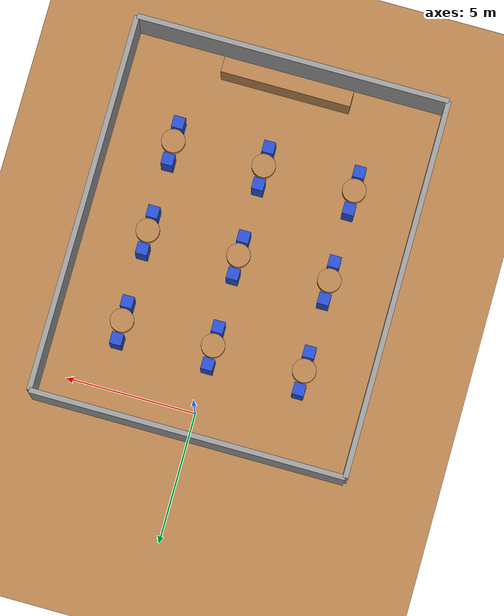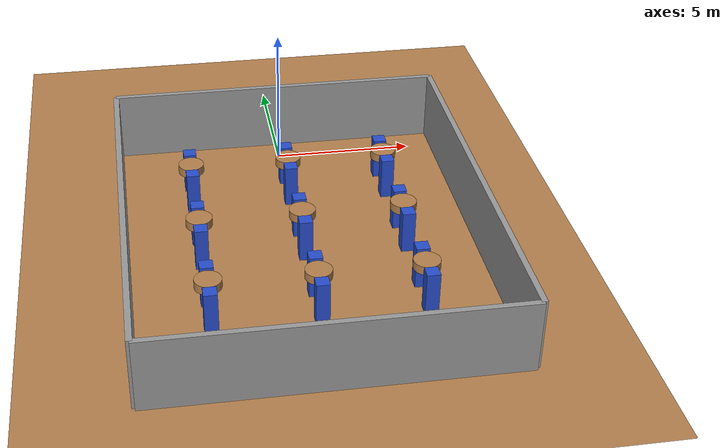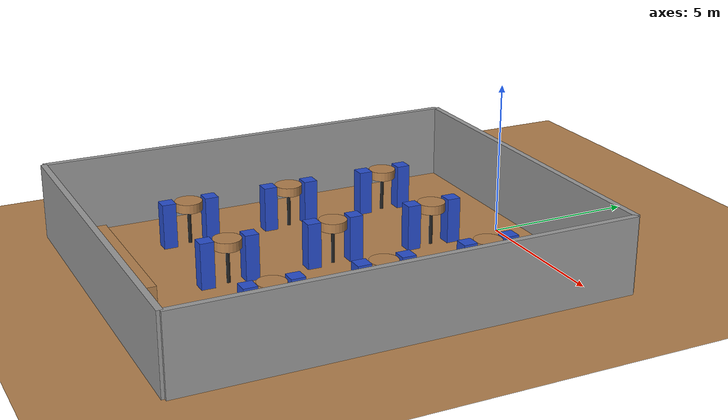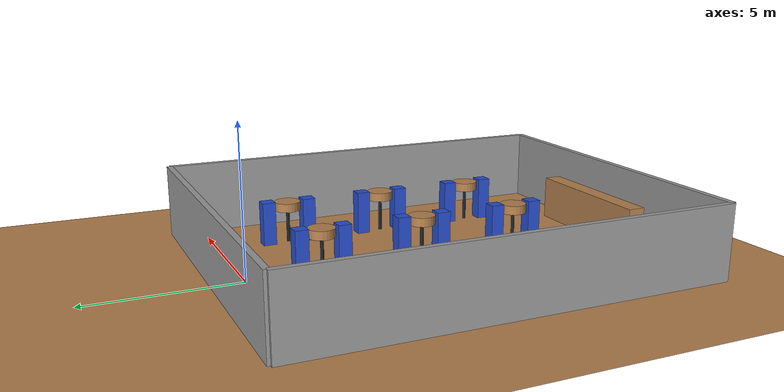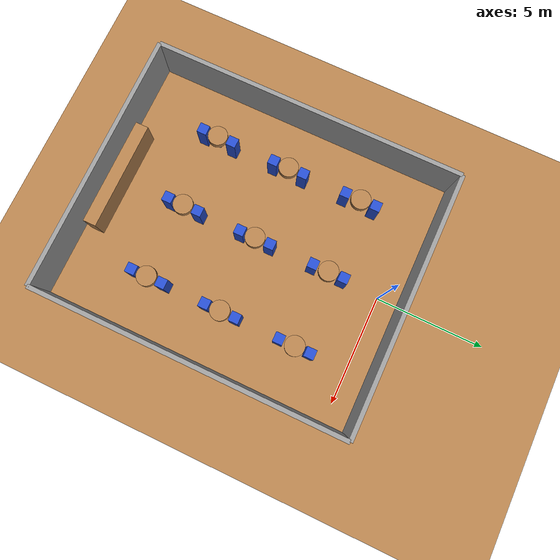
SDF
<?xml version="1.0" ?>
<sdf version="1.6">
  <world name="cafe">

    <physics type="ode"><real_time_update_rate>100</real_time_update_rate><max_step_size>0.005</max_step_size><real_time_factor>1</real_time_factor></physics>
    <light name="sun" type="directional"><cast_shadows>true</cast_shadows><pose>0 0 10 0 0 0</pose><diffuse>0.9 0.9 0.9 1</diffuse><specular>0.1 0.1 0.1 1</specular><direction>-0.5 0.2 -0.9</direction></light>

    <model name="ground_plane"><static>true</static><pose>0 -6.25 0 0 0 0</pose><link name="link">
      <collision name="collision"><geometry><plane><normal>0 0 1</normal><size>13.2 15.7</size></plane></geometry><surface><friction><ode><mu>1</mu><mu2>1</mu2></ode></friction></surface></collision>
      <visual name="visual"><geometry><plane><normal>0 0 1</normal><size>13.2 15.7</size></plane></geometry><material><script><uri>file://media/materials/scripts/gazebo.material</uri><name>Gazebo/WoodFloor</name></script></material></visual></link></model>

    <model name="wall_north"><static>true</static><pose>0 1.0 1.25 0 0 0</pose><link name="link"><collision name="col"><geometry><box><size>12 0.2 2.5</size></box></geometry></collision><visual name="vis"><geometry><box><size>12 0.2 2.5</size></box></geometry><material><script><uri>file://media/materials/scripts/gazebo.material</uri><name>Gazebo/Grey</name></script></material></visual></link></model>
    <model name="wall_south"><static>true</static><pose>0 -13.5 1.25 0 0 0</pose><link name="link"><collision name="col"><geometry><box><size>12 0.2 2.5</size></box></geometry></collision><visual name="vis"><geometry><box><size>12 0.2 2.5</size></box></geometry><material><script><uri>file://media/materials/scripts/gazebo.material</uri><name>Gazebo/Grey</name></script></material></visual></link></model>
    <model name="wall_west"><static>true</static><pose>-6 -6.25 1.25 0 0 0</pose><link name="link"><collision name="col"><geometry><box><size>0.2 14.5 2.5</size></box></geometry></collision><visual name="vis"><geometry><box><size>0.2 14.5 2.5</size></box></geometry><material><script><uri>file://media/materials/scripts/gazebo.material</uri><name>Gazebo/Grey</name></script></material></visual></link></model>
    <model name="wall_east"><static>true</static><pose>6 -6.25 1.25 0 0 0</pose><link name="link"><collision name="col"><geometry><box><size>0.2 14.5 2.5</size></box></geometry></collision><visual name="vis"><geometry><box><size>0.2 14.5 2.5</size></box></geometry><material><script><uri>file://media/materials/scripts/gazebo.material</uri><name>Gazebo/Grey</name></script></material></visual></link></model>

    <model name="table1"><static>true</static><pose>-3.5 -2.5 0 0 0 0</pose>
      <link name="top"><pose>0 0 1.3 0 0 0</pose><collision name="col"><geometry><cylinder><radius>0.45</radius><length>0.3</length></cylinder></geometry></collision><visual name="vis"><geometry><cylinder><radius>0.45</radius><length>0.3</length></cylinder></geometry><material><script><uri>file://media/materials/scripts/gazebo.material</uri><name>Gazebo/Wood</name></script></material></visual></link>
      <link name="pedestal"><pose>0 0 0.575 0 0 0</pose><collision name="col"><geometry><cylinder><radius>0.06</radius><length>1.150</length></cylinder></geometry></collision><visual name="vis"><geometry><cylinder><radius>0.06</radius><length>1.150</length></cylinder></geometry><material><script><uri>file://media/materials/scripts/gazebo.material</uri><name>Gazebo/FlatBlack</name></script></material></visual></link></model>
    <model name="table2"><static>true</static><pose>0.0 -2.5 0 0 0 0</pose>
      <link name="top"><pose>0 0 1.3 0 0 0</pose><collision name="col"><geometry><cylinder><radius>0.45</radius><length>0.3</length></cylinder></geometry></collision><visual name="vis"><geometry><cylinder><radius>0.45</radius><length>0.3</length></cylinder></geometry><material><script><uri>file://media/materials/scripts/gazebo.material</uri><name>Gazebo/Wood</name></script></material></visual></link>
      <link name="pedestal"><pose>0 0 0.575 0 0 0</pose><collision name="col"><geometry><cylinder><radius>0.06</radius><length>1.150</length></cylinder></geometry></collision><visual name="vis"><geometry><cylinder><radius>0.06</radius><length>1.150</length></cylinder></geometry><material><script><uri>file://media/materials/scripts/gazebo.material</uri><name>Gazebo/FlatBlack</name></script></material></visual></link></model>
    <model name="table3"><static>true</static><pose>3.5 -2.5 0 0 0 0</pose>
      <link name="top"><pose>0 0 1.3 0 0 0</pose><collision name="col"><geometry><cylinder><radius>0.45</radius><length>0.3</length></cylinder></geometry></collision><visual name="vis"><geometry><cylinder><radius>0.45</radius><length>0.3</length></cylinder></geometry><material><script><uri>file://media/materials/scripts/gazebo.material</uri><name>Gazebo/Wood</name></script></material></visual></link>
      <link name="pedestal"><pose>0 0 0.575 0 0 0</pose><collision name="col"><geometry><cylinder><radius>0.06</radius><length>1.150</length></cylinder></geometry></collision><visual name="vis"><geometry><cylinder><radius>0.06</radius><length>1.150</length></cylinder></geometry><material><script><uri>file://media/materials/scripts/gazebo.material</uri><name>Gazebo/FlatBlack</name></script></material></visual></link></model>
    <model name="table4"><static>true</static><pose>-3.5 -6.0 0 0 0 0</pose>
      <link name="top"><pose>0 0 1.3 0 0 0</pose><collision name="col"><geometry><cylinder><radius>0.45</radius><length>0.3</length></cylinder></geometry></collision><visual name="vis"><geometry><cylinder><radius>0.45</radius><length>0.3</length></cylinder></geometry><material><script><uri>file://media/materials/scripts/gazebo.material</uri><name>Gazebo/Wood</name></script></material></visual></link>
      <link name="pedestal"><pose>0 0 0.575 0 0 0</pose><collision name="col"><geometry><cylinder><radius>0.06</radius><length>1.150</length></cylinder></geometry></collision><visual name="vis"><geometry><cylinder><radius>0.06</radius><length>1.150</length></cylinder></geometry><material><script><uri>file://media/materials/scripts/gazebo.material</uri><name>Gazebo/FlatBlack</name></script></material></visual></link></model>
    <model name="table5"><static>true</static><pose>0.0 -6.0 0 0 0 0</pose>
      <link name="top"><pose>0 0 1.3 0 0 0</pose><collision name="col"><geometry><cylinder><radius>0.45</radius><length>0.3</length></cylinder></geometry></collision><visual name="vis"><geometry><cylinder><radius>0.45</radius><length>0.3</length></cylinder></geometry><material><script><uri>file://media/materials/scripts/gazebo.material</uri><name>Gazebo/Wood</name></script></material></visual></link>
      <link name="pedestal"><pose>0 0 0.575 0 0 0</pose><collision name="col"><geometry><cylinder><radius>0.06</radius><length>1.150</length></cylinder></geometry></collision><visual name="vis"><geometry><cylinder><radius>0.06</radius><length>1.150</length></cylinder></geometry><material><script><uri>file://media/materials/scripts/gazebo.material</uri><name>Gazebo/FlatBlack</name></script></material></visual></link></model>
    <model name="table6"><static>true</static><pose>3.5 -6.0 0 0 0 0</pose>
      <link name="top"><pose>0 0 1.3 0 0 0</pose><collision name="col"><geometry><cylinder><radius>0.45</radius><length>0.3</length></cylinder></geometry></collision><visual name="vis"><geometry><cylinder><radius>0.45</radius><length>0.3</length></cylinder></geometry><material><script><uri>file://media/materials/scripts/gazebo.material</uri><name>Gazebo/Wood</name></script></material></visual></link>
      <link name="pedestal"><pose>0 0 0.575 0 0 0</pose><collision name="col"><geometry><cylinder><radius>0.06</radius><length>1.150</length></cylinder></geometry></collision><visual name="vis"><geometry><cylinder><radius>0.06</radius><length>1.150</length></cylinder></geometry><material><script><uri>file://media/materials/scripts/gazebo.material</uri><name>Gazebo/FlatBlack</name></script></material></visual></link></model>
    <model name="table7"><static>true</static><pose>-3.5 -9.5 0 0 0 0</pose>
      <link name="top"><pose>0 0 1.3 0 0 0</pose><collision name="col"><geometry><cylinder><radius>0.45</radius><length>0.3</length></cylinder></geometry></collision><visual name="vis"><geometry><cylinder><radius>0.45</radius><length>0.3</length></cylinder></geometry><material><script><uri>file://media/materials/scripts/gazebo.material</uri><name>Gazebo/Wood</name></script></material></visual></link>
      <link name="pedestal"><pose>0 0 0.575 0 0 0</pose><collision name="col"><geometry><cylinder><radius>0.06</radius><length>1.150</length></cylinder></geometry></collision><visual name="vis"><geometry><cylinder><radius>0.06</radius><length>1.150</length></cylinder></geometry><material><script><uri>file://media/materials/scripts/gazebo.material</uri><name>Gazebo/FlatBlack</name></script></material></visual></link></model>
    <model name="table8"><static>true</static><pose>0.0 -9.5 0 0 0 0</pose>
      <link name="top"><pose>0 0 1.3 0 0 0</pose><collision name="col"><geometry><cylinder><radius>0.45</radius><length>0.3</length></cylinder></geometry></collision><visual name="vis"><geometry><cylinder><radius>0.45</radius><length>0.3</length></cylinder></geometry><material><script><uri>file://media/materials/scripts/gazebo.material</uri><name>Gazebo/Wood</name></script></material></visual></link>
      <link name="pedestal"><pose>0 0 0.575 0 0 0</pose><collision name="col"><geometry><cylinder><radius>0.06</radius><length>1.150</length></cylinder></geometry></collision><visual name="vis"><geometry><cylinder><radius>0.06</radius><length>1.150</length></cylinder></geometry><material><script><uri>file://media/materials/scripts/gazebo.material</uri><name>Gazebo/FlatBlack</name></script></material></visual></link></model>
    <model name="table9"><static>true</static><pose>3.5 -9.5 0 0 0 0</pose>
      <link name="top"><pose>0 0 1.3 0 0 0</pose><collision name="col"><geometry><cylinder><radius>0.45</radius><length>0.3</length></cylinder></geometry></collision><visual name="vis"><geometry><cylinder><radius>0.45</radius><length>0.3</length></cylinder></geometry><material><script><uri>file://media/materials/scripts/gazebo.material</uri><name>Gazebo/Wood</name></script></material></visual></link>
      <link name="pedestal"><pose>0 0 0.575 0 0 0</pose><collision name="col"><geometry><cylinder><radius>0.06</radius><length>1.150</length></cylinder></geometry></collision><visual name="vis"><geometry><cylinder><radius>0.06</radius><length>1.150</length></cylinder></geometry><material><script><uri>file://media/materials/scripts/gazebo.material</uri><name>Gazebo/FlatBlack</name></script></material></visual></link></model>

    <model name="chair_t1_n"><static>true</static><pose>-3.5 -1.78 0.75 0 0 0</pose><link name="link"><collision name="col"><geometry><box><size>0.45 0.45 1.5</size></box></geometry></collision><visual name="vis"><geometry><box><size>0.45 0.45 1.5</size></box></geometry><material><script><uri>file://media/materials/scripts/gazebo.material</uri><name>Gazebo/Blue</name></script></material></visual></link></model>
    <model name="chair_t1_s"><static>true</static><pose>-3.5 -3.22 0.75 0 0 0</pose><link name="link"><collision name="col"><geometry><box><size>0.45 0.45 1.5</size></box></geometry></collision><visual name="vis"><geometry><box><size>0.45 0.45 1.5</size></box></geometry><material><script><uri>file://media/materials/scripts/gazebo.material</uri><name>Gazebo/Blue</name></script></material></visual></link></model>
    <model name="chair_t2_n"><static>true</static><pose>0.0 -1.78 0.75 0 0 0</pose><link name="link"><collision name="col"><geometry><box><size>0.45 0.45 1.5</size></box></geometry></collision><visual name="vis"><geometry><box><size>0.45 0.45 1.5</size></box></geometry><material><script><uri>file://media/materials/scripts/gazebo.material</uri><name>Gazebo/Blue</name></script></material></visual></link></model>
    <model name="chair_t2_s"><static>true</static><pose>0.0 -3.22 0.75 0 0 0</pose><link name="link"><collision name="col"><geometry><box><size>0.45 0.45 1.5</size></box></geometry></collision><visual name="vis"><geometry><box><size>0.45 0.45 1.5</size></box></geometry><material><script><uri>file://media/materials/scripts/gazebo.material</uri><name>Gazebo/Blue</name></script></material></visual></link></model>
    <model name="chair_t3_n"><static>true</static><pose>3.5 -1.78 0.75 0 0 0</pose><link name="link"><collision name="col"><geometry><box><size>0.45 0.45 1.5</size></box></geometry></collision><visual name="vis"><geometry><box><size>0.45 0.45 1.5</size></box></geometry><material><script><uri>file://media/materials/scripts/gazebo.material</uri><name>Gazebo/Blue</name></script></material></visual></link></model>
    <model name="chair_t3_s"><static>true</static><pose>3.5 -3.22 0.75 0 0 0</pose><link name="link"><collision name="col"><geometry><box><size>0.45 0.45 1.5</size></box></geometry></collision><visual name="vis"><geometry><box><size>0.45 0.45 1.5</size></box></geometry><material><script><uri>file://media/materials/scripts/gazebo.material</uri><name>Gazebo/Blue</name></script></material></visual></link></model>
    <model name="chair_t4_n"><static>true</static><pose>-3.5 -5.28 0.75 0 0 0</pose><link name="link"><collision name="col"><geometry><box><size>0.45 0.45 1.5</size></box></geometry></collision><visual name="vis"><geometry><box><size>0.45 0.45 1.5</size></box></geometry><material><script><uri>file://media/materials/scripts/gazebo.material</uri><name>Gazebo/Blue</name></script></material></visual></link></model>
    <model name="chair_t4_s"><static>true</static><pose>-3.5 -6.72 0.75 0 0 0</pose><link name="link"><collision name="col"><geometry><box><size>0.45 0.45 1.5</size></box></geometry></collision><visual name="vis"><geometry><box><size>0.45 0.45 1.5</size></box></geometry><material><script><uri>file://media/materials/scripts/gazebo.material</uri><name>Gazebo/Blue</name></script></material></visual></link></model>
    <model name="chair_t5_n"><static>true</static><pose>0.0 -5.28 0.75 0 0 0</pose><link name="link"><collision name="col"><geometry><box><size>0.45 0.45 1.5</size></box></geometry></collision><visual name="vis"><geometry><box><size>0.45 0.45 1.5</size></box></geometry><material><script><uri>file://media/materials/scripts/gazebo.material</uri><name>Gazebo/Blue</name></script></material></visual></link></model>
    <model name="chair_t5_s"><static>true</static><pose>0.0 -6.72 0.75 0 0 0</pose><link name="link"><collision name="col"><geometry><box><size>0.45 0.45 1.5</size></box></geometry></collision><visual name="vis"><geometry><box><size>0.45 0.45 1.5</size></box></geometry><material><script><uri>file://media/materials/scripts/gazebo.material</uri><name>Gazebo/Blue</name></script></material></visual></link></model>
    <model name="chair_t6_n"><static>true</static><pose>3.5 -5.28 0.75 0 0 0</pose><link name="link"><collision name="col"><geometry><box><size>0.45 0.45 1.5</size></box></geometry></collision><visual name="vis"><geometry><box><size>0.45 0.45 1.5</size></box></geometry><material><script><uri>file://media/materials/scripts/gazebo.material</uri><name>Gazebo/Blue</name></script></material></visual></link></model>
    <model name="chair_t6_s"><static>true</static><pose>3.5 -6.72 0.75 0 0 0</pose><link name="link"><collision name="col"><geometry><box><size>0.45 0.45 1.5</size></box></geometry></collision><visual name="vis"><geometry><box><size>0.45 0.45 1.5</size></box></geometry><material><script><uri>file://media/materials/scripts/gazebo.material</uri><name>Gazebo/Blue</name></script></material></visual></link></model>
    <model name="chair_t7_n"><static>true</static><pose>-3.5 -8.78 0.75 0 0 0</pose><link name="link"><collision name="col"><geometry><box><size>0.45 0.45 1.5</size></box></geometry></collision><visual name="vis"><geometry><box><size>0.45 0.45 1.5</size></box></geometry><material><script><uri>file://media/materials/scripts/gazebo.material</uri><name>Gazebo/Blue</name></script></material></visual></link></model>
    <model name="chair_t7_s"><static>true</static><pose>-3.5 -10.22 0.75 0 0 0</pose><link name="link"><collision name="col"><geometry><box><size>0.45 0.45 1.5</size></box></geometry></collision><visual name="vis"><geometry><box><size>0.45 0.45 1.5</size></box></geometry><material><script><uri>file://media/materials/scripts/gazebo.material</uri><name>Gazebo/Blue</name></script></material></visual></link></model>
    <model name="chair_t8_n"><static>true</static><pose>0.0 -8.78 0.75 0 0 0</pose><link name="link"><collision name="col"><geometry><box><size>0.45 0.45 1.5</size></box></geometry></collision><visual name="vis"><geometry><box><size>0.45 0.45 1.5</size></box></geometry><material><script><uri>file://media/materials/scripts/gazebo.material</uri><name>Gazebo/Blue</name></script></material></visual></link></model>
    <model name="chair_t8_s"><static>true</static><pose>0.0 -10.22 0.75 0 0 0</pose><link name="link"><collision name="col"><geometry><box><size>0.45 0.45 1.5</size></box></geometry></collision><visual name="vis"><geometry><box><size>0.45 0.45 1.5</size></box></geometry><material><script><uri>file://media/materials/scripts/gazebo.material</uri><name>Gazebo/Blue</name></script></material></visual></link></model>
    <model name="chair_t9_n"><static>true</static><pose>3.5 -8.78 0.75 0 0 0</pose><link name="link"><collision name="col"><geometry><box><size>0.45 0.45 1.5</size></box></geometry></collision><visual name="vis"><geometry><box><size>0.45 0.45 1.5</size></box></geometry><material><script><uri>file://media/materials/scripts/gazebo.material</uri><name>Gazebo/Blue</name></script></material></visual></link></model>
    <model name="chair_t9_s"><static>true</static><pose>3.5 -10.22 0.75 0 0 0</pose><link name="link"><collision name="col"><geometry><box><size>0.45 0.45 1.5</size></box></geometry></collision><visual name="vis"><geometry><box><size>0.45 0.45 1.5</size></box></geometry><material><script><uri>file://media/materials/scripts/gazebo.material</uri><name>Gazebo/Blue</name></script></material></visual></link></model>

    <model name="counter"><static>true</static><pose>0 -12.8 0.75 0 0 0</pose><link name="link"><collision name="col"><geometry><box><size>5.0 0.6 1.5</size></box></geometry></collision><visual name="vis"><geometry><box><size>5.0 0.6 1.5</size></box></geometry><material><script><uri>file://media/materials/scripts/gazebo.material</uri><name>Gazebo/Wood</name></script></material></visual></link></model>

  </world>
</sdf>
